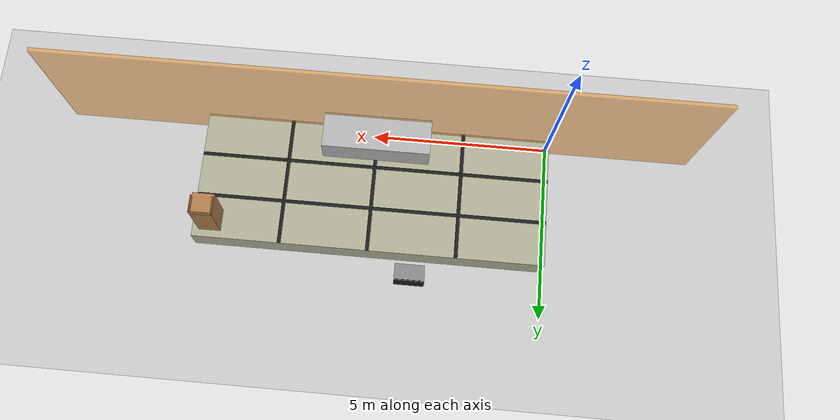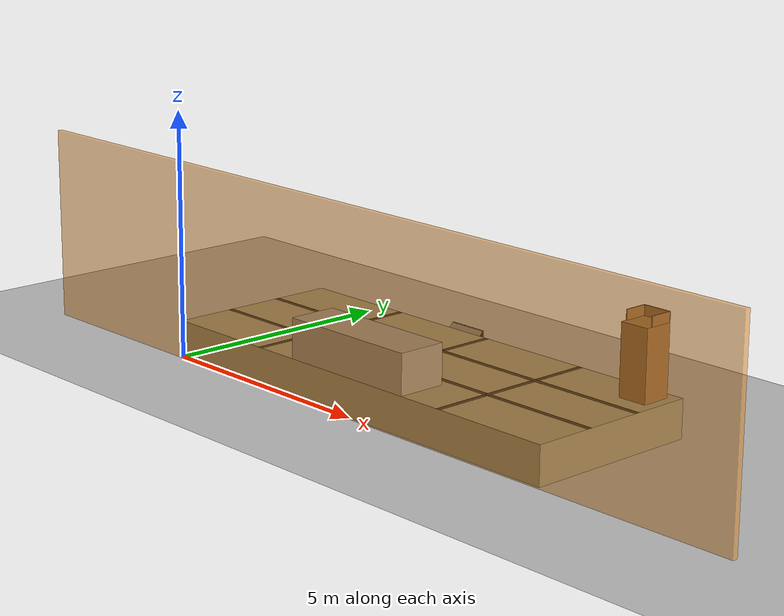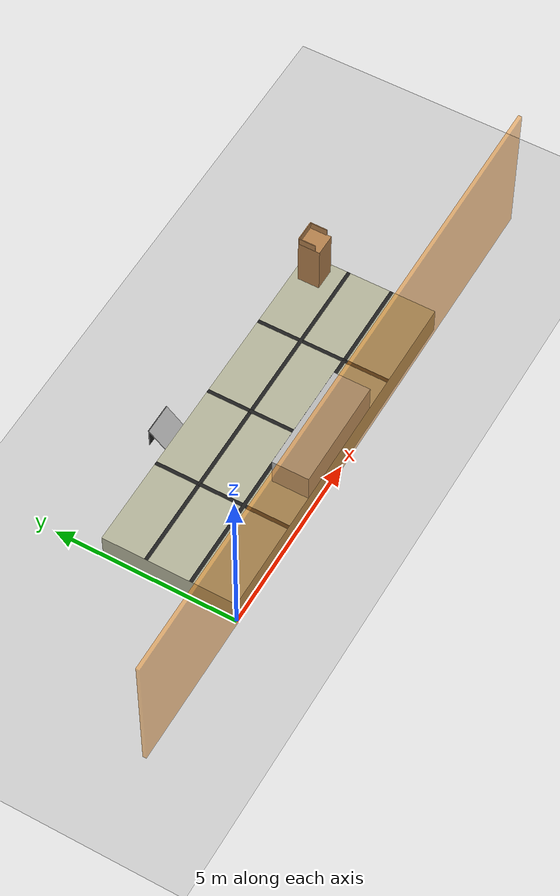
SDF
<?xml version="1.0" ?>
<sdf version="1.4">
  <world name="default">
    <include>
      <uri>model://ground_plane</uri>
    </include>

    <include>
      <uri>model://sun</uri>
    </include>

    <gui fullscreen='0'>
      <camera name='user_camera'>
        <pose frame=''>-1.7777 14.9877 5.73576 0 0.24 -1.17599</pose>
        <view_controller>orbit</view_controller>
        <projection_type>perspective</projection_type>
      </camera>
    </gui>

    <model name="Stage">
      <static>true</static>

      <link name="Stage">
        <pose>4.88 1.83 0.38 0 0 0</pose>
        <collision name="collision">
          <geometry>
            <box>
              <size>9.76 3.66 0.76</size>
            </box>
          </geometry>
        </collision>
        <visual name="visual">
          <geometry>
            <box>
              <size>9.76 3.66 0.76</size>
            </box>
          </geometry>
          <material>
            <script>
              <uri>file://media/materials/scripts/gazebo.material</uri>
              <name>Gazebo/Residential</name>
            </script>
          </material>
        </visual>
        <visual name='strip_h_1'>
          <pose frame=''>0 0.61 0.38 0 0 0</pose>
          <geometry>
            <box>
              <size>9.76 0.1 0.001</size>
            </box>
          </geometry>
          <material>
            <script>
              <uri>file://media/materials/scripts/gazebo.material</uri>
              <name>Gazebo/FlatBlack</name>
            </script>
          </material>
        </visual>
        <visual name='strip_h_2'>
          <pose frame=''>0 -0.61 0.38 0 0 0</pose>
          <geometry>
            <box>
              <size>9.76 0.1 0.001</size>
            </box>
          </geometry>
          <material>
            <script>
              <uri>file://media/materials/scripts/gazebo.material</uri>
              <name>Gazebo/FlatBlack</name>
            </script>
          </material>
        </visual>
        <visual name='strip_v_1'>
          <pose frame=''>0 0 0.38 0 0 0</pose>
          <geometry>
            <box>
              <size>0.1 3.66 0.001</size>
            </box>
          </geometry>
          <material>
            <script>
              <uri>file://media/materials/scripts/gazebo.material</uri>
              <name>Gazebo/FlatBlack</name>
            </script>
          </material>
        </visual>
        <visual name='strip_v_2'>
          <pose frame=''>2.44 0 0.38 0 0 0</pose>
          <geometry>
            <box>
              <size>0.1 3.66 0.001</size>
            </box>
          </geometry>
          <material>
            <script>
              <uri>file://media/materials/scripts/gazebo.material</uri>
              <name>Gazebo/FlatBlack</name>
            </script>
          </material>
        </visual>
        <visual name='strip_v_3'>
          <pose frame=''>-2.44 0 0.38 0 0 0</pose>
          <geometry>
            <box>
              <size>0.1 3.66 0.001</size>
            </box>
          </geometry>
          <material>
            <script>
              <uri>file://media/materials/scripts/gazebo.material</uri>
              <name>Gazebo/FlatBlack</name>
            </script>
          </material>
        </visual>
      </link>

      <link name="LCD">
        <pose>3.66 4.06 0.3 0.785 0 0</pose>
        <collision name="collision">
          <geometry>
            <box>
              <size>0.844 0.844 0.02</size>
            </box>
          </geometry>
        </collision>
        <visual name="visual">
          <geometry>
            <box>
              <size>0.844 0.844 0.02</size>
            </box>
          </geometry>
          <material>
            <script>
              <uri>file://media/materials/scripts/gazebo.material</uri>
              <name>Gazebo/Gray</name>
            </script>
          </material>
        </visual>
      </link>
      <link name="LCD_b">
        <pose>3.66 4.35 0.3 1.57 0 0</pose>
        <collision name="collision">
          <geometry>
            <box>
              <size>0.844 0.844 0.02</size>
            </box>
          </geometry>
        </collision>
        <visual name="visual">
          <geometry>
            <box>
              <size>0.844 0.6 0.02</size>
            </box>
          </geometry>
          <material>
            <script>
              <uri>file://media/materials/scripts/gazebo.material</uri>
              <name>Gazebo/Black</name>
            </script>
          </material>
        </visual>
      </link>

      <link name="Table">
        <pose>4.88 0.5 1.16 0 0 0</pose>
        <collision name="collision">
          <geometry>
            <box>
              <size>3 1 0.8</size>
            </box>
          </geometry>
        </collision>
        <visual name="visual">
          <geometry>
            <box>
              <size>3 1 0.8</size>
            </box>
          </geometry>
          <material>
            <script>
              <uri>file://media/materials/scripts/gazebo.material</uri>
              <name>Gazebo/Primary</name>
            </script>
          </material>
        </visual>
      </link>

      <link name="Rostrum">
        <pose>9.26 3.16 1.46 0 0 0</pose>
        <collision name="collision">
          <geometry>
            <box>
              <size>0.6 0.6 1.4</size>
            </box>
          </geometry>
        </collision>
        <visual name="visual">
          <geometry>
            <box>
              <size>0.6 0.6 1.4</size>
            </box>
          </geometry>
          <material>
            <script>
              <uri>file://media/materials/scripts/gazebo.material</uri>
              <name>Gazebo/Wood</name>
            </script>
          </material>
        </visual>
        <visual name='v1'>
          <pose frame=''>-0.29 0.05 0.8 0 0 0</pose>
          <geometry>
            <box>
              <size>0.02 0.46 0.2</size>
            </box>
          </geometry>
          <material>
            <script>
              <uri>file://media/materials/scripts/gazebo.material</uri>
              <name>Gazebo/Wood</name>
            </script>
          </material>
        </visual>
        <visual name='v2'>
          <pose frame=''>0.29 0.05 0.8 0 0 0</pose>
          <geometry>
            <box>
              <size>0.02 0.46 0.2</size>
            </box>
          </geometry>
          <material>
            <script>
              <uri>file://media/materials/scripts/gazebo.material</uri>
              <name>Gazebo/Wood</name>
            </script>
          </material>
        </visual>
        <visual name='v3'>
          <pose frame=''>0.0 0.29 0.8 0 0 0</pose>
          <geometry>
            <box>
              <size>0.6 0.02 0.2</size>
            </box>
          </geometry>
          <material>
            <script>
              <uri>file://media/materials/scripts/gazebo.material</uri>
              <name>Gazebo/Wood</name>
            </script>
          </material>
        </visual>
      </link>

      <link name="BackGround">
        <pose>4.88 0 2 0 0 0</pose>
        <collision name="collision">
          <geometry>
            <box>
              <size>18 0.1 4</size>
            </box>
          </geometry>
        </collision>
        <visual name="visual">
          <geometry>
            <box>
              <size>18 0.1 4</size>
            </box>
          </geometry>
          <material>
            <script>
              <uri>file://media/materials/scripts/gazebo.material</uri>
              <name>Gazebo/OrangeTransparent</name>
            </script>
          </material>
        </visual>
      </link>

    </model>

  </world>
</sdf>
